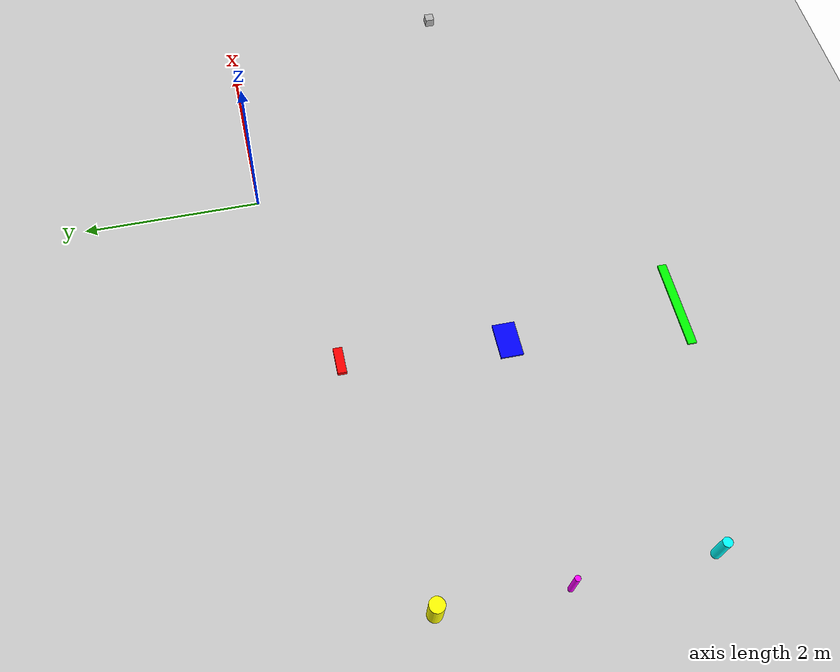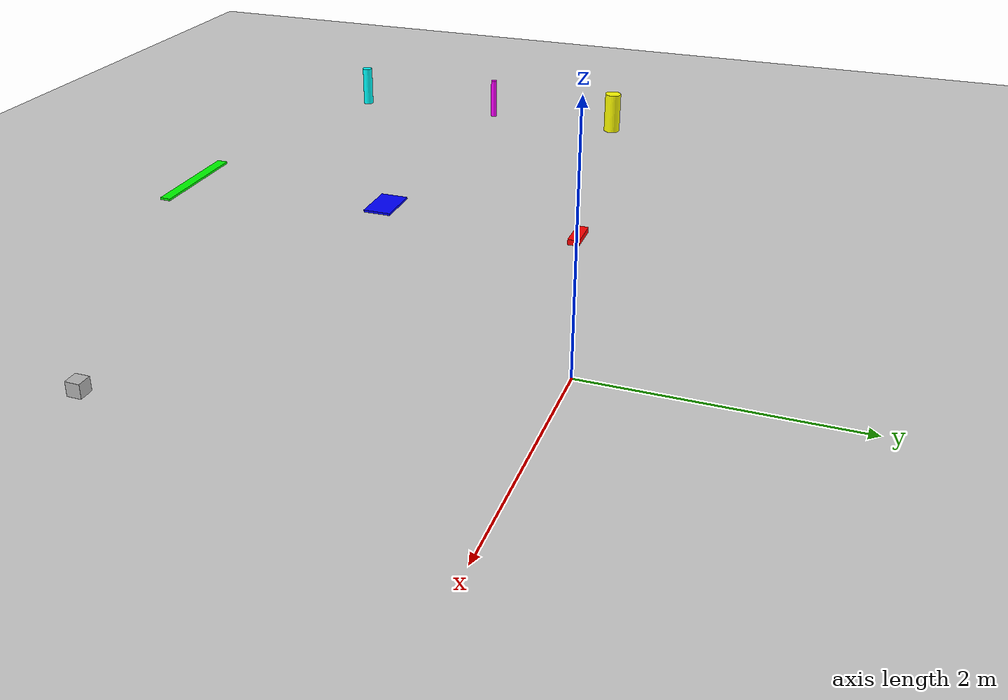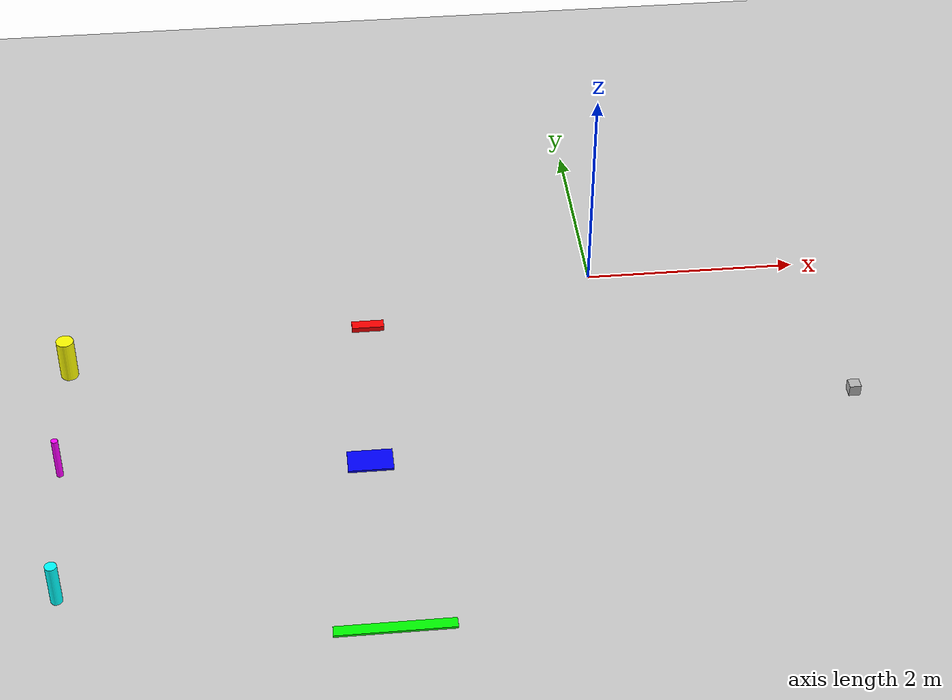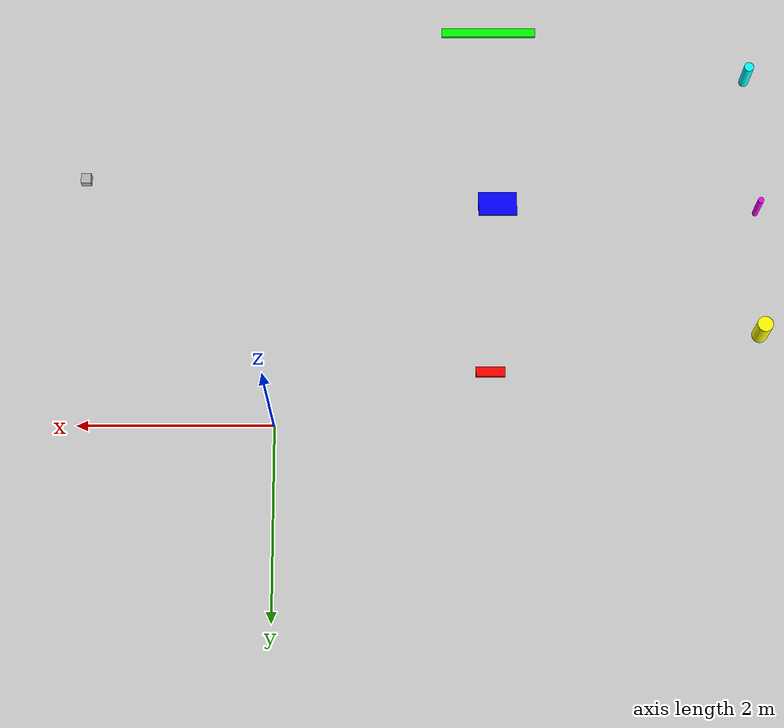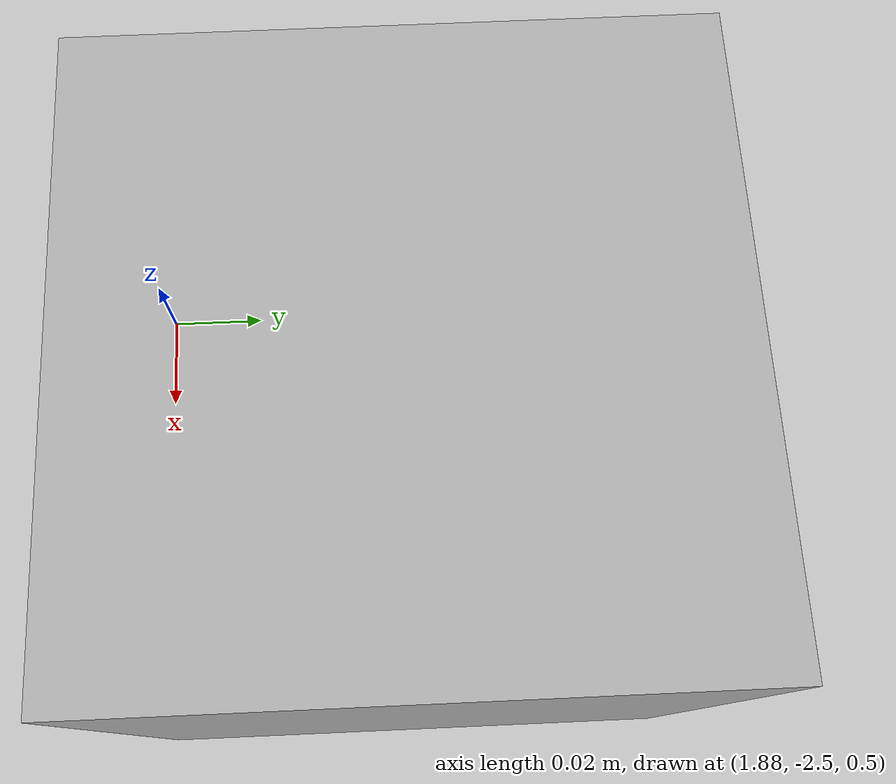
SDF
<sdf version='1.10'>
  <world name='empty'>
    <physics name='1ms' type='ignored'>
      <max_step_size>0.001</max_step_size>
      <real_time_factor>1</real_time_factor>
      <real_time_update_rate>1000</real_time_update_rate>
    </physics>
    <plugin name='gz::sim::systems::Physics' filename='gz-sim-physics-system'/>
    <plugin name='gz::sim::systems::UserCommands' filename='gz-sim-user-commands-system'/>
    <plugin name='gz::sim::systems::SceneBroadcaster' filename='gz-sim-scene-broadcaster-system'/>
    <plugin name='gz::sim::systems::Sensors' filename='gz-sim-sensors-system'>
      <render_engine>ogre2</render_engine>
    </plugin>
    <plugin name='gz::sim::systems::Contact' filename='gz-sim-contact-system'/>
    <gravity>0 0 -9.8000000000000007</gravity>
    <magnetic_field>5.5644999999999998e-06 2.2875799999999999e-05 -4.2388400000000002e-05</magnetic_field>
    <atmosphere type='adiabatic'/>
    <scene>
      <ambient>0.400000006 0.400000006 0.400000006 1</ambient>
      <background>0.699999988 0.699999988 0.699999988 1</background>
      <shadows>true</shadows>
    </scene>
    <model name='ground_plane'>
      <static>true</static>
      <link name='link'>
        <collision name='collision'>
          <geometry>
            <plane>
              <normal>0 0 1</normal>
              <size>100 100</size>
            </plane>
          </geometry>
          <surface>
            <friction>
              <ode/>
            </friction>
            <bounce/>
            <contact/>
          </surface>
        </collision>
        <visual name='visual'>
          <geometry>
            <plane>
              <normal>0 0 1</normal>
              <size>100 100</size>
            </plane>
          </geometry>
          <material>
            <ambient>0.800000012 0.800000012 0.800000012 1</ambient>
            <diffuse>0.800000012 0.800000012 0.800000012 1</diffuse>
            <specular>0.800000012 0.800000012 0.800000012 1</specular>
          </material>
        </visual>
        <pose>0 0 0 0 0 0</pose>
        <inertial>
          <pose>0 0 0 0 0 0</pose>
          <mass>1</mass>
          <inertia>
            <ixx>1</ixx>
            <ixy>0</ixy>
            <ixz>0</ixz>
            <iyy>1</iyy>
            <iyz>0</iyz>
            <izz>1</izz>
          </inertia>
        </inertial>
        <enable_wind>false</enable_wind>
      </link>
      <pose>0 0 0 0 0 0</pose>
      <self_collide>false</self_collide>
    </model>
    <model name='usb'>
      <pose>-2.1877003887709074 -0.5624695330939542 0.024999902908918063 -6.7928581423537275e-18 -3.1774301462100764e-19 2.4767312181357039e-21</pose>
      <link name='box_link'>
        <inertial>
          <inertia>
            <ixx>0.16666</ixx>
            <ixy>0</ixy>
            <ixz>0</ixz>
            <iyy>0.16666</iyy>
            <iyz>0</iyz>
            <izz>0.16666</izz>
          </inertia>
          <mass>1</mass>
          <pose>0 0 0 0 0 0</pose>
        </inertial>
        <collision name='box_collision'>
          <geometry>
            <box>
              <size>0.29999999999999999 0.10000000000000001 0.050000000000000003</size>
            </box>
          </geometry>
          <surface>
            <friction>
              <ode/>
            </friction>
            <bounce/>
            <contact/>
          </surface>
        </collision>
        <visual name='box_visual'>
          <geometry>
            <box>
              <size>0.29999999999999999 0.10000000000000001 0.050000000000000003</size>
            </box>
          </geometry>
          <material>
            <ambient>1 0 0 1</ambient>
            <diffuse>1 0 0 1</diffuse>
            <specular>1 1 1 1</specular>
          </material>
        </visual>
        <pose>0 0 0 0 0 0</pose>
        <enable_wind>false</enable_wind>
      </link>
      <static>false</static>
      <self_collide>false</self_collide>
    </model>
    <model name='credit_card'>
      <pose>-2.2827056370298244 -2.3846038677416774 0.0099999024442195949 -5.3747689488871478e-19 1.4810728004619324e-19 2.048191843029745e-21</pose>
      <link name='box_link'>
        <inertial>
          <inertia>
            <ixx>0.16666</ixx>
            <ixy>0</ixy>
            <ixz>0</ixz>
            <iyy>0.16666</iyy>
            <iyz>0</iyz>
            <izz>0.16666</izz>
          </inertia>
          <mass>1</mass>
          <pose>0 0 0 0 0 0</pose>
        </inertial>
        <collision name='box_collision'>
          <geometry>
            <box>
              <size>0.40000000000000002 0.25 0.02</size>
            </box>
          </geometry>
          <surface>
            <friction>
              <ode/>
            </friction>
            <bounce/>
            <contact/>
          </surface>
        </collision>
        <visual name='box_visual'>
          <geometry>
            <box>
              <size>0.40000000000000002 0.25 0.02</size>
            </box>
          </geometry>
          <material>
            <ambient>0 0 1 1</ambient>
            <diffuse>0 0 1 1</diffuse>
            <specular>1 1 1 1</specular>
          </material>
        </visual>
        <pose>0 0 0 0 0 0</pose>
        <enable_wind>false</enable_wind>
      </link>
      <static>false</static>
      <self_collide>false</self_collide>
    </model>
    <model name='ruler'>
      <pose>-2.2071640999212296 -4.3262305579606499 0.0099998985711815015 -1.0788008024151996e-17 -6.2867329420083653e-19 2.3068833210259388e-22</pose>
      <link name='box_link'>
        <inertial>
          <inertia>
            <ixx>0.16666</ixx>
            <ixy>0</ixy>
            <ixz>0</ixz>
            <iyy>0.16666</iyy>
            <iyz>0</iyz>
            <izz>0.16666</izz>
          </inertia>
          <mass>1</mass>
          <pose>0 0 0 0 0 0</pose>
        </inertial>
        <collision name='box_collision'>
          <geometry>
            <box>
              <size>1 0.10000000000000001 0.02</size>
            </box>
          </geometry>
          <surface>
            <friction>
              <ode/>
            </friction>
            <bounce/>
            <contact/>
          </surface>
        </collision>
        <visual name='box_visual'>
          <geometry>
            <box>
              <size>1 0.10000000000000001 0.02</size>
            </box>
          </geometry>
          <material>
            <ambient>0 1 0 1</ambient>
            <diffuse>0 1 0 1</diffuse>
            <specular>1 1 1 1</specular>
          </material>
        </visual>
        <pose>0 0 0 0 0 0</pose>
        <enable_wind>false</enable_wind>
      </link>
      <static>false</static>
      <self_collide>false</self_collide>
    </model>
    <model name='bottle'>
      <pose>-4.9443664021853335 -0.96036808145364749 0.19999914198042404 -3.1810557044233686e-18 -7.4727763026783604e-19 2.0401756004635203e-20</pose>
      <link name='cylinder_link'>
        <inertial>
          <inertia>
            <ixx>0.14580000000000001</ixx>
            <ixy>0</ixy>
            <ixz>0</ixz>
            <iyy>0.14580000000000001</iyy>
            <iyz>0</iyz>
            <izz>0.125</izz>
          </inertia>
          <mass>1</mass>
          <pose>0 0 0 0 0 0</pose>
        </inertial>
        <collision name='cylinder_collision'>
          <geometry>
            <cylinder>
              <radius>0.080000000000000002</radius>
              <length>0.40000000000000002</length>
            </cylinder>
          </geometry>
          <surface>
            <friction>
              <ode/>
            </friction>
            <bounce/>
            <contact/>
          </surface>
        </collision>
        <visual name='cylinder_visual'>
          <geometry>
            <cylinder>
              <radius>0.080000000000000002</radius>
              <length>0.40000000000000002</length>
            </cylinder>
          </geometry>
          <material>
            <ambient>1 1 0 1</ambient>
            <diffuse>1 1 0 1</diffuse>
            <specular>1 1 1 1</specular>
          </material>
        </visual>
        <pose>0 0 0 0 0 0</pose>
        <enable_wind>false</enable_wind>
      </link>
      <static>false</static>
      <self_collide>false</self_collide>
    </model>
    <model name='pen'>
      <pose>-4.961837548956801 -2.2843624628155998 0.19999914203550381 3.6955799647325561e-19 5.2190988829368935e-19 1.8573982441481746e-20</pose>
      <link name='cylinder_link'>
        <inertial>
          <inertia>
            <ixx>0.14580000000000001</ixx>
            <ixy>0</ixy>
            <ixz>0</ixz>
            <iyy>0.14580000000000001</iyy>
            <iyz>0</iyz>
            <izz>0.125</izz>
          </inertia>
          <mass>1</mass>
          <pose>0 0 0 0 0 0</pose>
        </inertial>
        <collision name='cylinder_collision'>
          <geometry>
            <cylinder>
              <radius>0.029999999999999999</radius>
              <length>0.40000000000000002</length>
            </cylinder>
          </geometry>
          <surface>
            <friction>
              <ode/>
            </friction>
            <bounce/>
            <contact/>
          </surface>
        </collision>
        <visual name='cylinder_visual'>
          <geometry>
            <cylinder>
              <radius>0.029999999999999999</radius>
              <length>0.40000000000000002</length>
            </cylinder>
          </geometry>
          <material>
            <ambient>1 0 1 1</ambient>
            <diffuse>1 0 1 1</diffuse>
            <specular>1 1 1 1</specular>
          </material>
        </visual>
        <pose>0 0 0 0 0 0</pose>
        <enable_wind>false</enable_wind>
      </link>
      <static>false</static>
      <self_collide>false</self_collide>
    </model>
    <model name='marker'>
      <pose>-4.90873086455899 -3.7613948764558351 0.19999914201948077 6.9427799638013643e-18 3.1958086255646628e-18 -1.3796635094257423e-20</pose>
      <link name='cylinder_link'>
        <inertial>
          <inertia>
            <ixx>0.14580000000000001</ixx>
            <ixy>0</ixy>
            <ixz>0</ixz>
            <iyy>0.14580000000000001</iyy>
            <iyz>0</iyz>
            <izz>0.125</izz>
          </inertia>
          <mass>1</mass>
          <pose>0 0 0 0 0 0</pose>
        </inertial>
        <collision name='cylinder_collision'>
          <geometry>
            <cylinder>
              <radius>0.050000000000000003</radius>
              <length>0.40000000000000002</length>
            </cylinder>
          </geometry>
          <surface>
            <friction>
              <ode/>
            </friction>
            <bounce/>
            <contact/>
          </surface>
        </collision>
        <visual name='cylinder_visual'>
          <geometry>
            <cylinder>
              <radius>0.050000000000000003</radius>
              <length>0.40000000000000002</length>
            </cylinder>
          </geometry>
          <material>
            <ambient>0 1 1 1</ambient>
            <diffuse>0 1 1 1</diffuse>
            <specular>1 1 1 1</specular>
          </material>
        </visual>
        <pose>0 0 0 0 0 0</pose>
        <enable_wind>false</enable_wind>
      </link>
      <static>false</static>
      <self_collide>false</self_collide>
    </model>
    <model name='depth_camera'>
      <pose>1.975566029548645 -2.3983142375946045 0.5 0 0 3.1399999999975172</pose>
      <link name='link'>
        <pose>0.050000000000000003 0.050000000000000003 0.050000000000000003 0 0 0</pose>
        <inertial>
          <mass>0.10000000000000001</mass>
          <inertia>
            <ixx>0.00016666700000000001</ixx>
            <iyy>0.00016666700000000001</iyy>
            <izz>0.00016666700000000001</izz>
            <ixy>0</ixy>
            <ixz>0</ixz>
            <iyz>0</iyz>
          </inertia>
          <pose>0 0 0 0 0 0</pose>
        </inertial>
        <collision name='collision'>
          <geometry>
            <box>
              <size>0.10000000000000001 0.10000000000000001 0.10000000000000001</size>
            </box>
          </geometry>
          <surface>
            <friction>
              <ode/>
            </friction>
            <bounce/>
            <contact/>
          </surface>
        </collision>
        <visual name='visual'>
          <geometry>
            <box>
              <size>0.10000000000000001 0.10000000000000001 0.10000000000000001</size>
            </box>
          </geometry>
        </visual>
        <sensor name='depth_camera1' type='depth_camera'>
          <pose>0 0 0 0 0 0</pose>
          <topic>depth_camera</topic>
          <update_rate>10</update_rate>
          <enable_metrics>false</enable_metrics>
          <camera>
            <pose>0 0 0 0 0 0</pose>
            <horizontal_fov>1.05</horizontal_fov>
            <image>
              <width>256</width>
              <height>256</height>
              <format>R_FLOAT32</format>
              <anti_aliasing>4</anti_aliasing>
            </image>
            <camera_info_topic>__default__</camera_info_topic>
            <trigger_topic></trigger_topic>
            <triggered>false</triggered>
            <clip>
              <near>0.10000000000000001</near>
              <far>10</far>
            </clip>
            <save enabled='false'>
              <path>__default__</path>
            </save>
            <visibility_mask>4294967295</visibility_mask>
            <noise>
              <type>none</type>
              <mean>0</mean>
              <stddev>0</stddev>
            </noise>
            <distortion>
              <k1>0</k1>
              <k2>0</k2>
              <k3>0</k3>
              <p1>0</p1>
              <p2>0</p2>
              <center>0.5 0.5</center>
            </distortion>
            <lens>
              <type>stereographic</type>
              <scale_to_hfov>true</scale_to_hfov>
              <cutoff_angle>1.5707963267948966</cutoff_angle>
              <env_texture_size>256</env_texture_size>
            </lens>
            <optical_frame_id></optical_frame_id>
          </camera>
        </sensor>
        <sensor name='rgb_camera' type='camera'>
          <pose>0 0 0 0 0 0</pose>
          <topic>rgb_camera</topic>
          <update_rate>10</update_rate>
          <enable_metrics>false</enable_metrics>
          <camera>
            <pose>0 0 0 0 0 0</pose>
            <horizontal_fov>1.05</horizontal_fov>
            <image>
              <width>640</width>
              <height>480</height>
              <format>RGB_INT8</format>
              <anti_aliasing>4</anti_aliasing>
            </image>
            <camera_info_topic>__default__</camera_info_topic>
            <trigger_topic></trigger_topic>
            <triggered>false</triggered>
            <clip>
              <near>0.10000000000000001</near>
              <far>10</far>
            </clip>
            <save enabled='false'>
              <path>__default__</path>
            </save>
            <visibility_mask>4294967295</visibility_mask>
            <noise>
              <type>none</type>
              <mean>0</mean>
              <stddev>0</stddev>
            </noise>
            <distortion>
              <k1>0</k1>
              <k2>0</k2>
              <k3>0</k3>
              <p1>0</p1>
              <p2>0</p2>
              <center>0.5 0.5</center>
            </distortion>
            <lens>
              <type>stereographic</type>
              <scale_to_hfov>true</scale_to_hfov>
              <cutoff_angle>1.5707963267948966</cutoff_angle>
              <env_texture_size>256</env_texture_size>
            </lens>
            <optical_frame_id></optical_frame_id>
          </camera>
        </sensor>
        <enable_wind>false</enable_wind>
      </link>
      <static>true</static>
      <self_collide>false</self_collide>
    </model>
    <light name='sun' type='directional'>
      <pose>0 0 10 0 0 0</pose>
      <cast_shadows>true</cast_shadows>
      <intensity>1</intensity>
      <direction>-0.5 0.10000000000000001 -0.90000000000000002</direction>
      <diffuse>0.800000012 0.800000012 0.800000012 1</diffuse>
      <specular>0.200000003 0.200000003 0.200000003 1</specular>
      <attenuation>
        <range>1000</range>
        <linear>0.0099999997764825821</linear>
        <constant>0.89999997615814209</constant>
        <quadratic>0.0010000000474974513</quadratic>
      </attenuation>
      <spot>
        <inner_angle>0</inner_angle>
        <outer_angle>0</outer_angle>
        <falloff>0</falloff>
      </spot>
    </light>
  </world>
</sdf>
